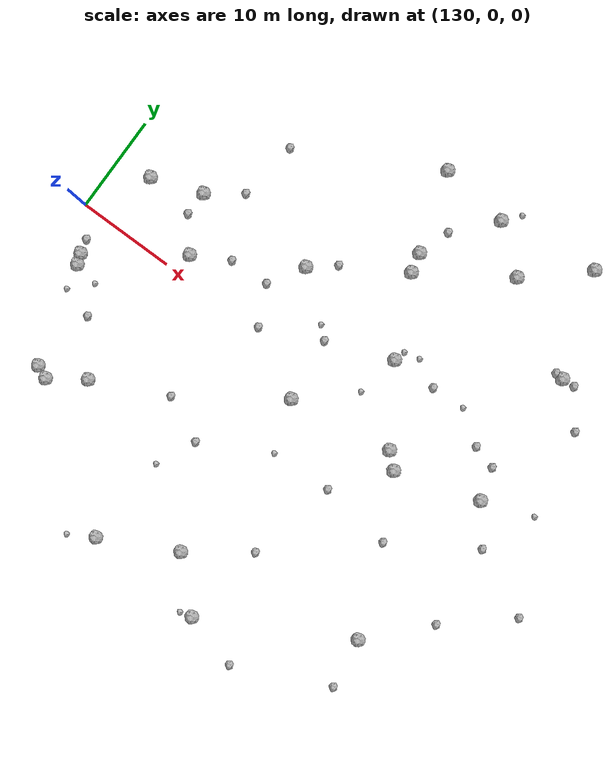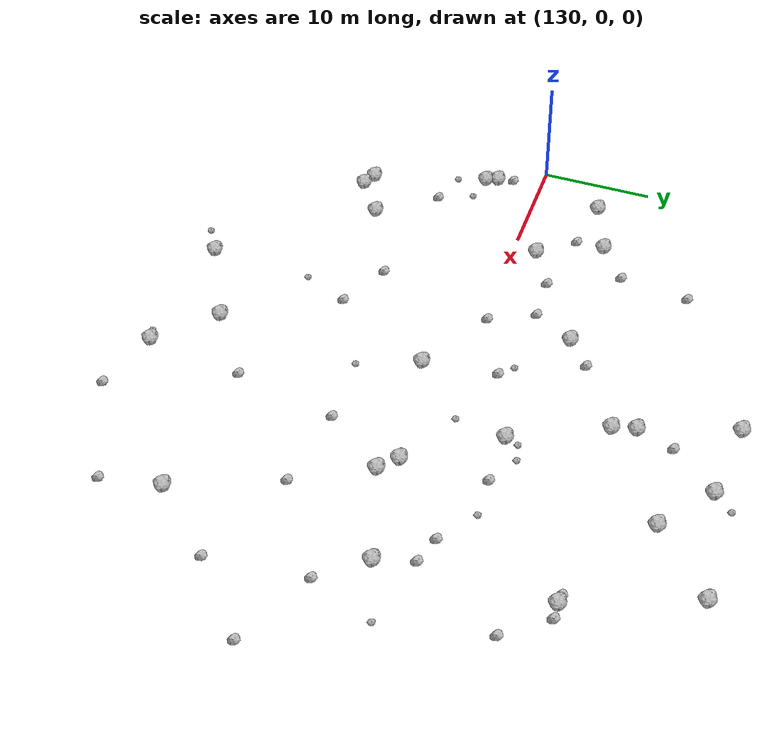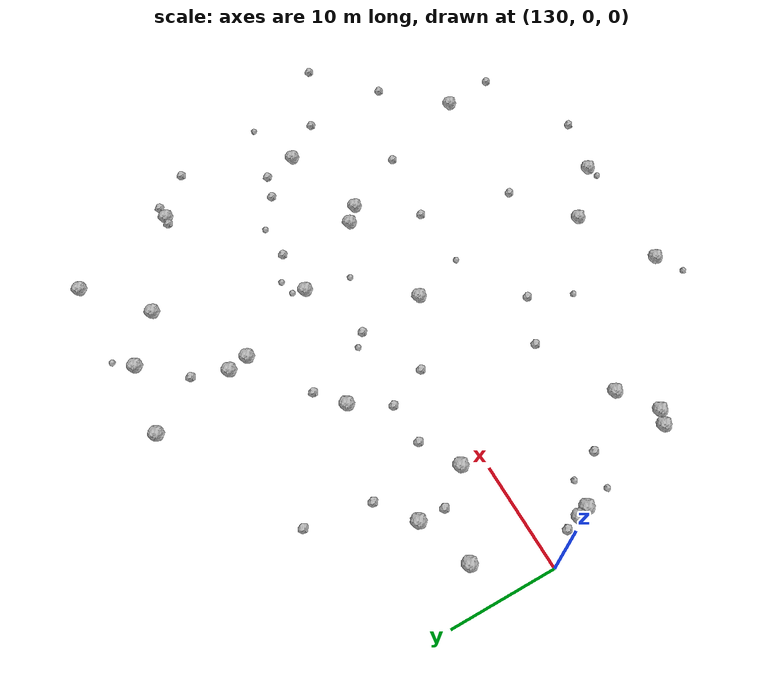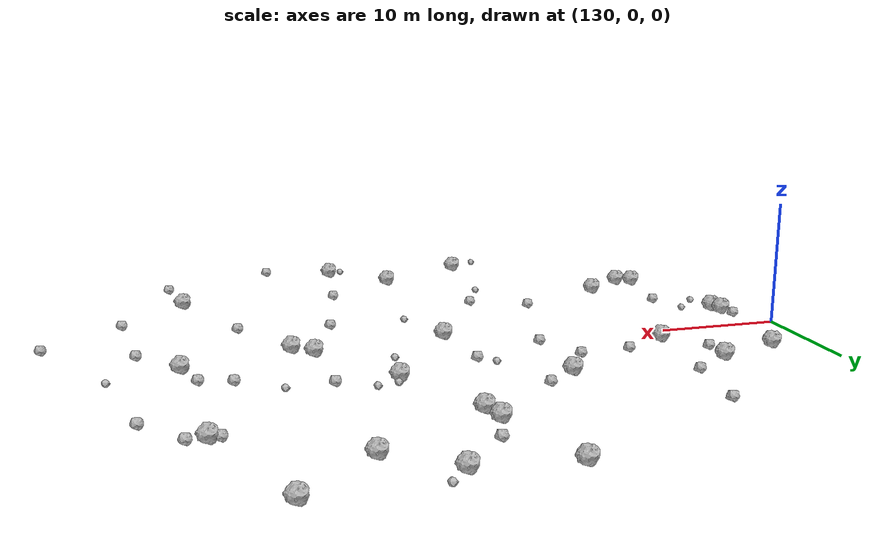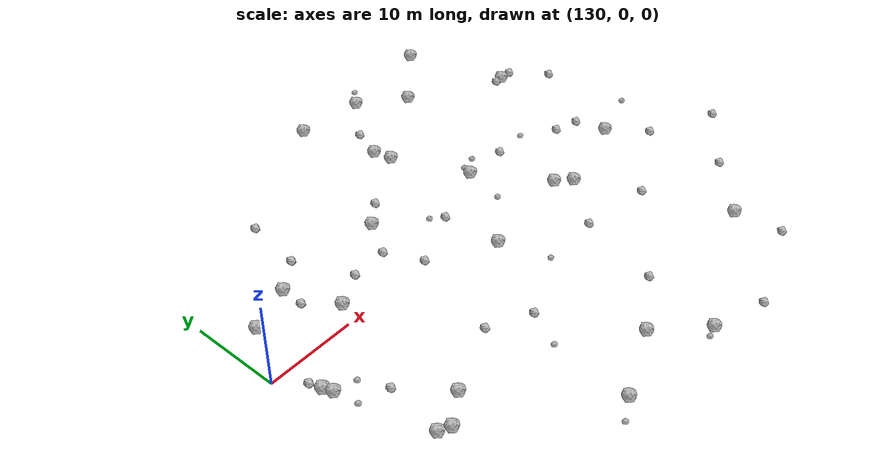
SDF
<sdf version="1.6">
 <world name="default">
  <include><uri>model://sun</uri></include>
  <model name="rock1_4_2">
   <include><uri>model://rock1</uri><pose>137.1520099938865 -16.139921756476674 0.5 0 0 0</pose></include>
  </model>
  <model name="rock1_4_3">
   <include><uri>model://rock1</uri><pose>132.99450047267644 -5.2206784924811025 0.5 0 0 0</pose></include>
  </model>
  <model name="rock1_4_4">
   <include><uri>model://rock1</uri><pose>177.34721732792048 -18.545745037337166 0.5 0 0 0</pose></include>
  </model>
  <model name="rock1_4_5">
   <include><uri>model://rock1</uri><pose>174.44902584244102 24.709530594428834 0.5 0 0 0</pose></include>
  </model>
  <model name="rock1_4_6">
   <include><uri>model://rock1</uri><pose>157.88845728257937 -3.3492255563498006 0.5 0 0 0</pose></include>
  </model>
  <model name="rock1_4_7">
   <include><uri>model://rock1</uri><pose>164.1169642190823 23.155435605284758 0.5 0 0 0</pose></include>
  </model>
  <model name="rock1_4_8">
   <include><uri>model://rock1</uri><pose>133.6960267511133 5.993352055987586 0.5 0 0 0</pose></include>
  </model>
  <model name="rock1_4_9">
   <include><uri>model://rock1</uri><pose>132.59557053935796 -4.152924710073695 0.5 0 0 0</pose></include>
  </model>
  <model name="rock1_4_10">
   <include><uri>model://rock1</uri><pose>138.84571023971992 7.827518296240207 0.5 0 0 0</pose></include>
  </model>
  <model name="rock1_4_11">
   <include><uri>model://rock1</uri><pose>150.48608945026348 -25.809965604089516 0.5 0 0 0</pose></include>
  </model>
  <model name="rock1_4_12">
   <include><uri>model://rock1</uri><pose>178.2861752329919 14.179088357228764 0.5 0 0 0</pose></include>
  </model>
  <model name="rock1_4_13">
   <include><uri>model://rock1</uri><pose>151.30772061183666 7.992765932320012 0.5 0 0 0</pose></include>
  </model>
  <model name="rock1_4_14">
   <include><uri>model://rock1</uri><pose>170.2583391890232 -3.0287459413184408 0.5 0 0 0</pose></include>
  </model>
  <model name="rock1_4_15">
   <include><uri>model://rock1</uri><pose>163.8263313508925 5.833343292298423 0.5 0 0 0</pose></include>
  </model>
  <model name="rock1_4_16">
   <include><uri>model://rock1</uri><pose>168.71479680341935 -1.6278864969095004 0.5 0 0 0</pose></include>
  </model>
  <model name="rock1_4_17">
   <include><uri>model://rock1</uri><pose>158.0843398628486 -21.982718501508906 0.5 0 0 0</pose></include>
  </model>
  <model name="rock1_4_18">
   <include><uri>model://rock1</uri><pose>156.9263092093548 24.001604861173746 0.5 0 0 0</pose></include>
  </model>
  <model name="rock1_4_19">
   <include><uri>model://rock1</uri><pose>141.36154227047942 2.131755967597428 0.5 0 0 0</pose></include>
  </model>
  <model name="rock1_4_20">
   <include><uri>model://rock1</uri><pose>160.00990680619336 13.773178978205536 0.5 0 0 0</pose></include>
  </model>
  <model name="rock1_4_21">
   <include><uri>model://rock1</uri><pose>159.52780939008179 15.789548808174224 0.5 0 0 0</pose></include>
  </model>
  <model name="rock1_4_22">
   <include><uri>model://rock1</uri><pose>168.70467535501157 19.57429822007321 0.5 0 0 0</pose></include>
  </model>
  <model name="rock1_4_23">
   <include><uri>model://rock1</uri><pose>135.8306175419226 -15.552227143090755 0.5 0 0 0</pose></include>
  </model>
  <model name="rock1_4_24">
   <include><uri>model://rock1</uri><pose>140.60269641453777 -13.735195889431036 0.5 0 0 0</pose></include>
  </model>
  <model name="rock1_4_25">
   <include><uri>model://rock1</uri><pose>162.78750962005472 -26.502339888604574 0.5 0 0 0</pose></include>
  </model>
  <model name="rock1_4_26">
   <include><uri>model://rock1</uri><pose>178.91967414138296 -0.3058342348503871 0.5 0 0 0</pose></include>
  </model>
  <model name="rock2_4_0">
   <include><uri>model://rock2</uri><pose>149.11660734711705 4.385972296911191 0.3 0 0 0</pose></include>
  </model>
  <model name="rock2_4_1">
   <include><uri>model://rock2</uri><pose>182.675247198123 -12.775968435137582 0.3 0 0 0</pose></include>
  </model>
  <model name="rock2_4_2">
   <include><uri>model://rock2</uri><pose>145.00944442278484 4.193191016187292 0.3 0 0 0</pose></include>
  </model>
  <model name="rock2_4_3">
   <include><uri>model://rock2</uri><pose>157.08368516571073 3.2315197727407394 0.3 0 0 0</pose></include>
  </model>
  <model name="rock2_4_4">
   <include><uri>model://rock2</uri><pose>168.59658372376092 -28.153268825820263 0.3 0 0 0</pose></include>
  </model>
  <model name="rock2_4_5">
   <include><uri>model://rock2</uri><pose>166.09914634558706 -8.396341996265548 0.3 0 0 0</pose></include>
  </model>
  <model name="rock2_4_6">
   <include><uri>model://rock2</uri><pose>152.7740956328658 -12.390762327174986 0.3 0 0 0</pose></include>
  </model>
  <model name="rock2_4_7">
   <include><uri>model://rock2</uri><pose>164.04950907449097 -17.658062306215513 0.3 0 0 0</pose></include>
  </model>
  <model name="rock2_4_8">
   <include><uri>model://rock2</uri><pose>151.02625448429407 0.43579122635340894 0.3 0 0 0</pose></include>
  </model>
  <model name="rock2_4_9">
   <include><uri>model://rock2</uri><pose>153.7937274773313 10.091782076380078 0.3 0 0 0</pose></include>
  </model>
  <model name="rock2_4_10">
   <include><uri>model://rock2</uri><pose>173.60627209141057 -9.365699258534438 0.3 0 0 0</pose></include>
  </model>
  <model name="rock2_4_11">
   <include><uri>model://rock2</uri><pose>178.15978043236242 -23.78851162007284 0.3 0 0 0</pose></include>
  </model>
  <model name="rock2_4_12">
   <include><uri>model://rock2</uri><pose>177.4379436573342 14.280418997741855 0.3 0 0 0</pose></include>
  </model>
  <model name="rock2_4_13">
   <include><uri>model://rock2</uri><pose>168.51399168163854 5.892541223662562 0.3 0 0 0</pose></include>
  </model>
  <model name="rock2_4_14">
   <include><uri>model://rock2</uri><pose>132.18184504107845 -2.689168693296189 0.3 0 0 0</pose></include>
  </model>
  <model name="rock2_4_15">
   <include><uri>model://rock2</uri><pose>160.5824938728377 19.136821895915467 0.3 0 0 0</pose></include>
  </model>
  <model name="rock2_4_16">
   <include><uri>model://rock2</uri><pose>179.63630546773572 14.283122364419697 0.3 0 0 0</pose></include>
  </model>
  <model name="rock2_4_17">
   <include><uri>model://rock2</uri><pose>143.0199992328156 16.55029292684378 0.3 0 0 0</pose></include>
  </model>
  <model name="rock2_4_18">
   <include><uri>model://rock2</uri><pose>188.88864058130264 -7.378838657356496 0.3 0 0 0</pose></include>
  </model>
  <model name="rock2_4_19">
   <include><uri>model://rock2</uri><pose>175.40829116226166 3.750912758633021 0.3 0 0 0</pose></include>
  </model>
  <model name="rock2_4_20">
   <include><uri>model://rock2</uri><pose>181.9084080948728 -4.064224643938289 0.3 0 0 0</pose></include>
  </model>
  <model name="rock2_4_21">
   <include><uri>model://rock2</uri><pose>136.79459437221237 -8.735993037634138 0.3 0 0 0</pose></include>
  </model>
  <model name="rock2_4_22">
   <include><uri>model://rock2</uri><pose>182.4074403896555 10.724753845856931 0.3 0 0 0</pose></include>
  </model>
  <model name="rock2_4_23">
   <include><uri>model://rock2</uri><pose>138.76121419535085 5.316424906735655 0.3 0 0 0</pose></include>
  </model>
  <model name="rock2_4_24">
   <include><uri>model://rock2</uri><pose>148.13508205074987 -10.195439957517301 0.3 0 0 0</pose></include>
  </model>
  <model name="rock2_4_25">
   <include><uri>model://rock2</uri><pose>177.89138276898535 3.0238042568098322 0.3 0 0 0</pose></include>
  </model>
  <model name="rock2_4_26">
   <include><uri>model://rock2</uri><pose>142.1837324829441 10.339080786961205 0.3 0 0 0</pose></include>
  </model>
  <model name="rock3_4_0">
   <include><uri>model://rock3</uri><pose>164.12462717443685 6.995189655415075 0.2 0 0 0</pose></include>
  </model>
  <model name="rock3_4_1">
   <include><uri>model://rock3</uri><pose>165.48082987961314 24.8312214118154 0.2 0 0 0</pose></include>
  </model>
  <model name="rock3_4_2">
   <include><uri>model://rock3</uri><pose>159.71699019691957 -8.703884554953337 0.2 0 0 0</pose></include>
  </model>
  <model name="rock3_4_3">
   <include><uri>model://rock3</uri><pose>155.86856958635715 4.301151621975151 0.2 0 0 0</pose></include>
  </model>
  <model name="rock3_4_4">
   <include><uri>model://rock3</uri><pose>147.9246988695 -27.352929764284095 0.2 0 0 0</pose></include>
  </model>
  <model name="rock3_4_5">
   <include><uri>model://rock3</uri><pose>165.73246056749988 7.360517447009869 0.2 0 0 0</pose></include>
  </model>
  <model name="rock3_4_6">
   <include><uri>model://rock3</uri><pose>161.53590733451284 -26.89054341019904 0.2 0 0 0</pose></include>
  </model>
  <model name="rock3_4_7">
   <include><uri>model://rock3</uri><pose>150.92335609091987 -16.50513334276255 0.2 0 0 0</pose></include>
  </model>
  <model name="rock3_4_8">
   <include><uri>model://rock3</uri><pose>172.07209921379655 6.026292909229753 0.2 0 0 0</pose></include>
  </model>
  <model name="rock3_4_9">
   <include><uri>model://rock3</uri><pose>133.50625764796504 -7.818707236567196 0.2 0 0 0</pose></include>
  </model>
  <model name="rock3_4_10">
   <include><uri>model://rock3</uri><pose>163.0016684196033 1.3097082462202998 0.2 0 0 0</pose></include>
  </model>
  <model name="rock3_4_11">
   <include><uri>model://rock3</uri><pose>184.17215561199563 1.5583698483941255 0.2 0 0 0</pose></include>
  </model>
  <model name="rock3_4_12">
   <include><uri>model://rock3</uri><pose>135.4398463630264 -5.748526345950225 0.2 0 0 0</pose></include>
  </model>
 </world>
</sdf>
